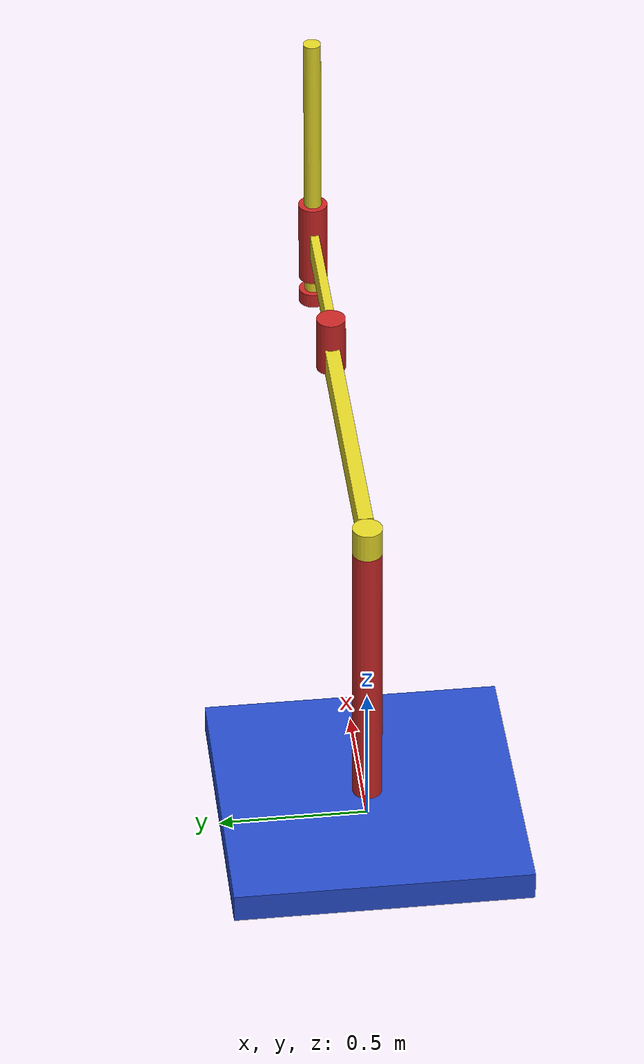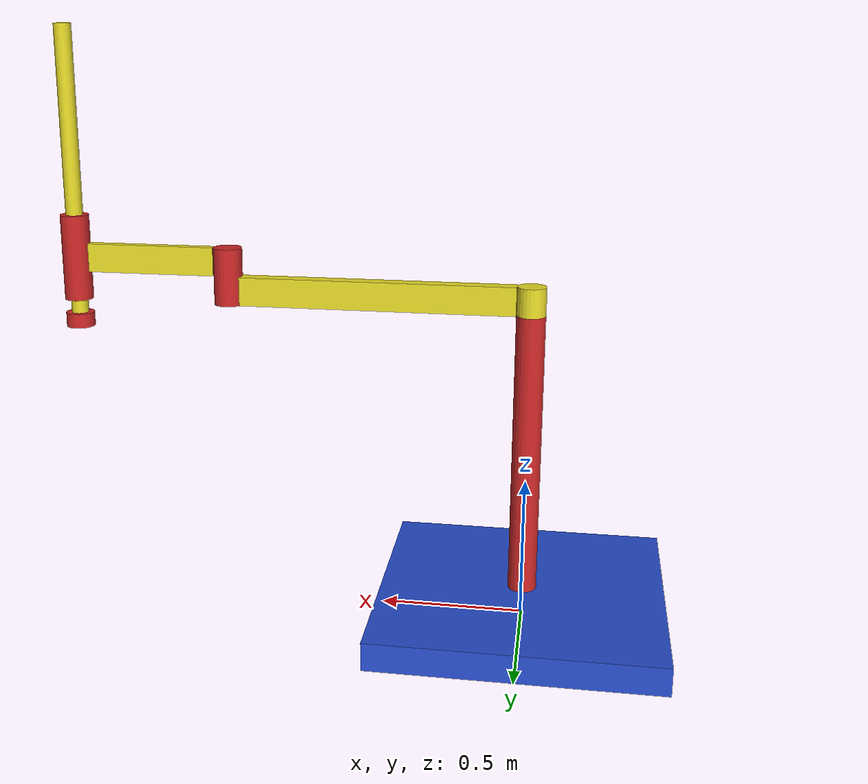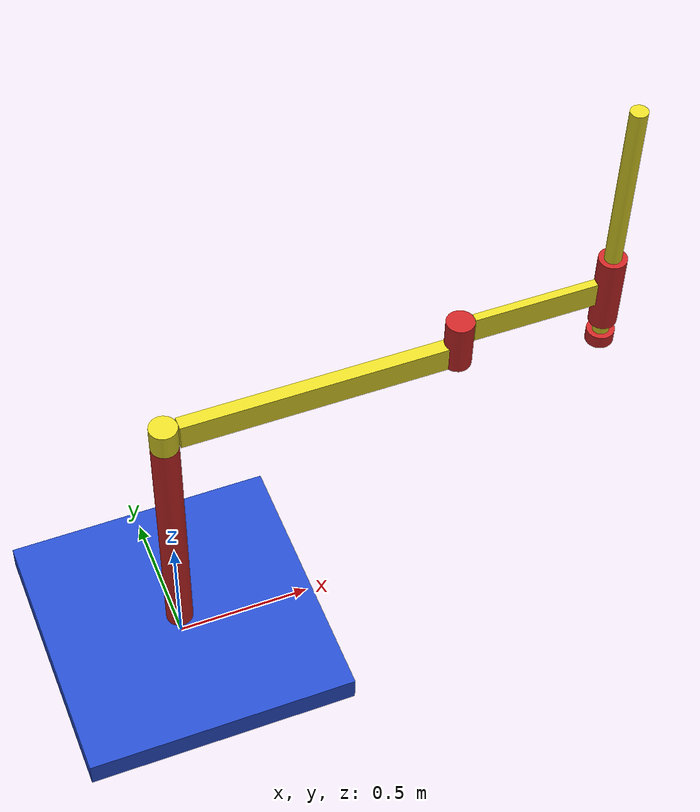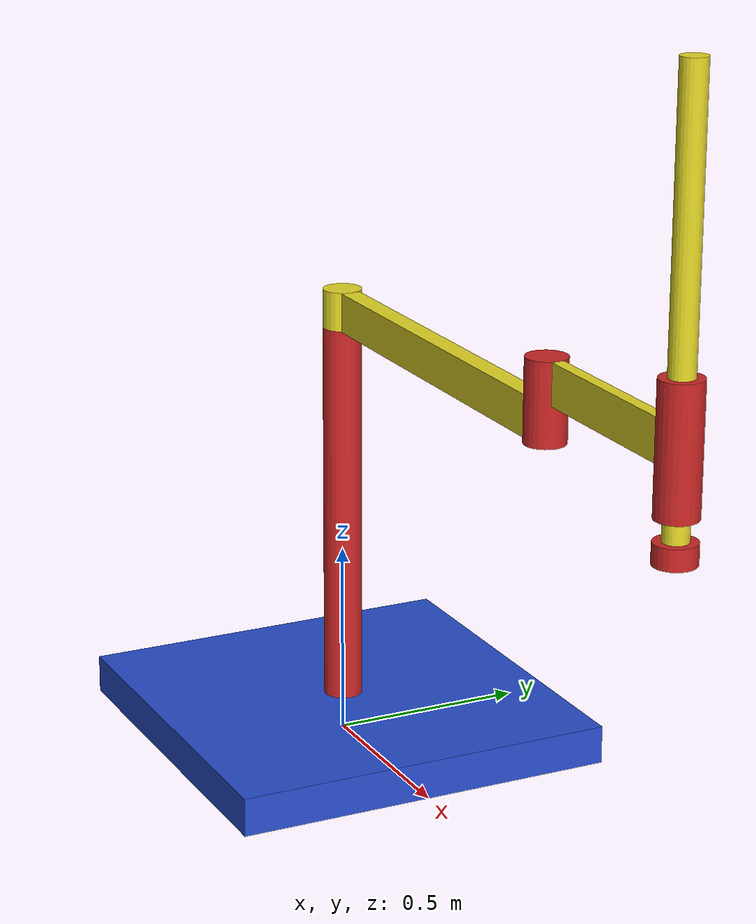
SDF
<?xml version='1.0'?>
<sdf version='1.6'>
  <model name='simple_arm'>
    <link name='arm_base'>
      <inertial>
        <pose frame=''>0 0 0.00099 0 -0 0</pose>
        <inertia>
          <ixx>1.11</ixx>
          <ixy>0</ixy>
          <ixz>0</ixz>
          <iyy>100.11</iyy>
          <iyz>0</iyz>
          <izz>1.01</izz>
        </inertia>
        <mass>101</mass>
      </inertial>
      <self_collide>0</self_collide>
      <enable_wind>0</enable_wind>
      <kinematic>0</kinematic>
      <pose frame=''>0 0 0 0 -0 0</pose>
      <visual name='arm_base_geom_arm_trunk_visual'>
        <pose frame=''>0 0 0.6 0 -0 0</pose>
        <geometry>
          <cylinder>
            <radius>0.05</radius>
            <length>1</length>
          </cylinder>
        </geometry>
        <material>
          <script>
            <uri>file://media/materials/scripts/gazebo.material</uri>
            <name>Gazebo/Red</name>
          </script>
        </material>
        <transparency>0</transparency>
        <cast_shadows>1</cast_shadows>
      </visual>
      <visual name='arm_base_geom_visual'>
        <pose frame=''>0 0 0.05 0 -0 0</pose>
        <geometry>
          <box>
            <size>1 1 0.1</size>
          </box>
        </geometry>
        <material>
          <script>
            <uri>file://media/materials/scripts/gazebo.material</uri>
            <name>Gazebo/Blue</name>
          </script>
        </material>
        <transparency>0</transparency>
        <cast_shadows>1</cast_shadows>
      </visual>
      <collision name='arm_base_geom'>
        <laser_retro>0</laser_retro>
        <max_contacts>10</max_contacts>
        <pose frame=''>0 0 0.05 0 -0 0</pose>
        <geometry>
          <box>
            <size>1 1 0.1</size>
          </box>
        </geometry>
        <surface>
          <friction>
            <ode>
              <mu>1</mu>
              <mu2>1</mu2>
              <fdir1>0 0 0</fdir1>
              <slip1>0</slip1>
              <slip2>0</slip2>
            </ode>
            <torsional>
              <coefficient>1</coefficient>
              <patch_radius>0</patch_radius>
              <surface_radius>0</surface_radius>
              <use_patch_radius>1</use_patch_radius>
              <ode>
                <slip>0</slip>
              </ode>
            </torsional>
          </friction>
          <bounce>
            <restitution_coefficient>0</restitution_coefficient>
            <threshold>1e+06</threshold>
          </bounce>
          <contact>
            <collide_without_contact>0</collide_without_contact>
            <collide_without_contact_bitmask>1</collide_without_contact_bitmask>
            <collide_bitmask>1</collide_bitmask>
            <ode>
              <soft_cfm>0</soft_cfm>
              <soft_erp>0.2</soft_erp>
              <kp>1e+13</kp>
              <kd>1</kd>
              <max_vel>0.01</max_vel>
              <min_depth>0</min_depth>
            </ode>
            <bullet>
              <split_impulse>1</split_impulse>
              <split_impulse_penetration_threshold>-0.01</split_impulse_penetration_threshold>
              <soft_cfm>0</soft_cfm>
              <soft_erp>0.2</soft_erp>
              <kp>1e+13</kp>
              <kd>1</kd>
            </bullet>
          </contact>
        </surface>
      </collision>
      <collision name='arm_base_geom_arm_trunk'>
        <laser_retro>0</laser_retro>
        <max_contacts>10</max_contacts>
        <pose frame=''>0 0 0.6 0 -0 0</pose>
        <geometry>
          <cylinder>
            <radius>0.05</radius>
            <length>1</length>
          </cylinder>
        </geometry>
        <surface>
          <friction>
            <ode>
              <mu>1</mu>
              <mu2>1</mu2>
              <fdir1>0 0 0</fdir1>
              <slip1>0</slip1>
              <slip2>0</slip2>
            </ode>
            <torsional>
              <coefficient>1</coefficient>
              <patch_radius>0</patch_radius>
              <surface_radius>0</surface_radius>
              <use_patch_radius>1</use_patch_radius>
              <ode>
                <slip>0</slip>
              </ode>
            </torsional>
          </friction>
          <bounce>
            <restitution_coefficient>0</restitution_coefficient>
            <threshold>1e+06</threshold>
          </bounce>
          <contact>
            <collide_without_contact>0</collide_without_contact>
            <collide_without_contact_bitmask>1</collide_without_contact_bitmask>
            <collide_bitmask>1</collide_bitmask>
            <ode>
              <soft_cfm>0</soft_cfm>
              <soft_erp>0.2</soft_erp>
              <kp>1e+13</kp>
              <kd>1</kd>
              <max_vel>0.01</max_vel>
              <min_depth>0</min_depth>
            </ode>
            <bullet>
              <split_impulse>1</split_impulse>
              <split_impulse_penetration_threshold>-0.01</split_impulse_penetration_threshold>
              <soft_cfm>0</soft_cfm>
              <soft_erp>0.2</soft_erp>
              <kp>1e+13</kp>
              <kd>1</kd>
            </bullet>
          </contact>
        </surface>
      </collision>
    </link>
    <link name='arm_elbow_pan'>
      <pose frame=''>1.05 0 1.09998 0 -0 0</pose>
      <inertial>
        <pose frame=''>0.0875 0 0.083333 0 -0 0</pose>
        <inertia>
          <ixx>0.031</ixx>
          <ixy>0</ixy>
          <ixz>0.005</ixz>
          <iyy>0.07275</iyy>
          <iyz>0</iyz>
          <izz>0.04475</izz>
        </inertia>
        <mass>1.2</mass>
      </inertial>
      <self_collide>0</self_collide>
      <enable_wind>0</enable_wind>
      <kinematic>0</kinematic>
      <visual name='arm_elbow_pan_geom_visual'>
        <pose frame=''>0 0 0.1 0 -0 0</pose>
        <geometry>
          <cylinder>
            <radius>0.05</radius>
            <length>0.2</length>
          </cylinder>
        </geometry>
        <material>
          <script>
            <uri>file://media/materials/scripts/gazebo.material</uri>
            <name>Gazebo/Red</name>
          </script>
        </material>
        <transparency>0</transparency>
        <cast_shadows>1</cast_shadows>
      </visual>
      <visual name='arm_elbow_pan_geom_arm_elbow_visual'>
        <pose frame=''>0.3 0 0.15 0 -0 0</pose>
        <geometry>
          <box>
            <size>0.5 0.03 0.1</size>
          </box>
        </geometry>
        <material>
          <script>
            <uri>file://media/materials/scripts/gazebo.material</uri>
            <name>Gazebo/Yellow</name>
          </script>
        </material>
        <transparency>0</transparency>
        <cast_shadows>1</cast_shadows>
      </visual>
      <visual name='arm_elbow_pan_geom_arm_wrist_visual'>
        <pose frame=''>0.55 0 0.15 0 -0 0</pose>
        <geometry>
          <cylinder>
            <radius>0.05</radius>
            <length>0.3</length>
          </cylinder>
        </geometry>
        <material>
          <script>
            <uri>file://media/materials/scripts/gazebo.material</uri>
            <name>Gazebo/Red</name>
          </script>
        </material>
        <transparency>0</transparency>
        <cast_shadows>1</cast_shadows>
      </visual>
      <collision name='arm_elbow_pan_geom'>
        <laser_retro>0</laser_retro>
        <max_contacts>10</max_contacts>
        <pose frame=''>0 0 0.1 0 -0 0</pose>
        <geometry>
          <cylinder>
            <radius>0.05</radius>
            <length>0.2</length>
          </cylinder>
        </geometry>
        <surface>
          <friction>
            <ode>
              <mu>1</mu>
              <mu2>1</mu2>
              <fdir1>0 0 0</fdir1>
              <slip1>0</slip1>
              <slip2>0</slip2>
            </ode>
            <torsional>
              <coefficient>1</coefficient>
              <patch_radius>0</patch_radius>
              <surface_radius>0</surface_radius>
              <use_patch_radius>1</use_patch_radius>
              <ode>
                <slip>0</slip>
              </ode>
            </torsional>
          </friction>
          <bounce>
            <restitution_coefficient>0</restitution_coefficient>
            <threshold>1e+06</threshold>
          </bounce>
          <contact>
            <collide_without_contact>0</collide_without_contact>
            <collide_without_contact_bitmask>1</collide_without_contact_bitmask>
            <collide_bitmask>1</collide_bitmask>
            <ode>
              <soft_cfm>0</soft_cfm>
              <soft_erp>0.2</soft_erp>
              <kp>1e+13</kp>
              <kd>1</kd>
              <max_vel>0.01</max_vel>
              <min_depth>0</min_depth>
            </ode>
            <bullet>
              <split_impulse>1</split_impulse>
              <split_impulse_penetration_threshold>-0.01</split_impulse_penetration_threshold>
              <soft_cfm>0</soft_cfm>
              <soft_erp>0.2</soft_erp>
              <kp>1e+13</kp>
              <kd>1</kd>
            </bullet>
          </contact>
        </surface>
      </collision>
      <collision name='arm_elbow_pan_geom_arm_elbow'>
        <laser_retro>0</laser_retro>
        <max_contacts>10</max_contacts>
        <pose frame=''>0.3 0 0.15 0 -0 0</pose>
        <geometry>
          <box>
            <size>0.5 0.03 0.1</size>
          </box>
        </geometry>
        <surface>
          <friction>
            <ode>
              <mu>1</mu>
              <mu2>1</mu2>
              <fdir1>0 0 0</fdir1>
              <slip1>0</slip1>
              <slip2>0</slip2>
            </ode>
            <torsional>
              <coefficient>1</coefficient>
              <patch_radius>0</patch_radius>
              <surface_radius>0</surface_radius>
              <use_patch_radius>1</use_patch_radius>
              <ode>
                <slip>0</slip>
              </ode>
            </torsional>
          </friction>
          <bounce>
            <restitution_coefficient>0</restitution_coefficient>
            <threshold>1e+06</threshold>
          </bounce>
          <contact>
            <collide_without_contact>0</collide_without_contact>
            <collide_without_contact_bitmask>1</collide_without_contact_bitmask>
            <collide_bitmask>1</collide_bitmask>
            <ode>
              <soft_cfm>0</soft_cfm>
              <soft_erp>0.2</soft_erp>
              <kp>1e+13</kp>
              <kd>1</kd>
              <max_vel>0.01</max_vel>
              <min_depth>0</min_depth>
            </ode>
            <bullet>
              <split_impulse>1</split_impulse>
              <split_impulse_penetration_threshold>-0.01</split_impulse_penetration_threshold>
              <soft_cfm>0</soft_cfm>
              <soft_erp>0.2</soft_erp>
              <kp>1e+13</kp>
              <kd>1</kd>
            </bullet>
          </contact>
        </surface>
      </collision>
      <collision name='arm_elbow_pan_geom_arm_wrist'>
        <laser_retro>0</laser_retro>
        <max_contacts>10</max_contacts>
        <pose frame=''>0.55 0 0.15 0 -0 0</pose>
        <geometry>
          <cylinder>
            <radius>0.05</radius>
            <length>0.3</length>
          </cylinder>
        </geometry>
        <surface>
          <friction>
            <ode>
              <mu>1</mu>
              <mu2>1</mu2>
              <fdir1>0 0 0</fdir1>
              <slip1>0</slip1>
              <slip2>0</slip2>
            </ode>
            <torsional>
              <coefficient>1</coefficient>
              <patch_radius>0</patch_radius>
              <surface_radius>0</surface_radius>
              <use_patch_radius>1</use_patch_radius>
              <ode>
                <slip>0</slip>
              </ode>
            </torsional>
          </friction>
          <bounce>
            <restitution_coefficient>0</restitution_coefficient>
            <threshold>1e+06</threshold>
          </bounce>
          <contact>
            <collide_without_contact>0</collide_without_contact>
            <collide_without_contact_bitmask>1</collide_without_contact_bitmask>
            <collide_bitmask>1</collide_bitmask>
            <ode>
              <soft_cfm>0</soft_cfm>
              <soft_erp>0.2</soft_erp>
              <kp>1e+13</kp>
              <kd>1</kd>
              <max_vel>0.01</max_vel>
              <min_depth>0</min_depth>
            </ode>
            <bullet>
              <split_impulse>1</split_impulse>
              <split_impulse_penetration_threshold>-0.01</split_impulse_penetration_threshold>
              <soft_cfm>0</soft_cfm>
              <soft_erp>0.2</soft_erp>
              <kp>1e+13</kp>
              <kd>1</kd>
            </bullet>
          </contact>
        </surface>
      </collision>
    </link>
    <link name='arm_shoulder_pan'>
      <pose frame=''>-0 0 1.09998 0 -0 0</pose>
      <inertial>
        <pose frame=''>0.045455 0 0 0 -0 0</pose>
        <inertia>
          <ixx>0.011</ixx>
          <ixy>0</ixy>
          <ixz>0</ixz>
          <iyy>0.0225</iyy>
          <iyz>0</iyz>
          <izz>0.0135</izz>
        </inertia>
        <mass>1.1</mass>
      </inertial>
      <self_collide>0</self_collide>
      <enable_wind>0</enable_wind>
      <kinematic>0</kinematic>
      <visual name='arm_shoulder_pan_geom_visual'>
        <pose frame=''>0 0 0.05 0 -0 0</pose>
        <geometry>
          <cylinder>
            <radius>0.05</radius>
            <length>0.1</length>
          </cylinder>
        </geometry>
        <material>
          <script>
            <uri>file://media/materials/scripts/gazebo.material</uri>
            <name>Gazebo/Yellow</name>
          </script>
        </material>
        <transparency>0</transparency>
        <cast_shadows>1</cast_shadows>
      </visual>
      <visual name='arm_shoulder_pan_geom_arm_shoulder_visual'>
        <pose frame=''>0.55 0 0.05 0 -0 0</pose>
        <geometry>
          <box>
            <size>1 0.05 0.1</size>
          </box>
        </geometry>
        <material>
          <script>
            <uri>file://media/materials/scripts/gazebo.material</uri>
            <name>Gazebo/Yellow</name>
          </script>
        </material>
        <transparency>0</transparency>
        <cast_shadows>1</cast_shadows>
      </visual>
      <collision name='arm_shoulder_pan_geom'>
        <laser_retro>0</laser_retro>
        <max_contacts>10</max_contacts>
        <pose frame=''>0 0 0.05 0 -0 0</pose>
        <geometry>
          <cylinder>
            <radius>0.05</radius>
            <length>0.1</length>
          </cylinder>
        </geometry>
        <surface>
          <friction>
            <ode>
              <mu>1</mu>
              <mu2>1</mu2>
              <fdir1>0 0 0</fdir1>
              <slip1>0</slip1>
              <slip2>0</slip2>
            </ode>
            <torsional>
              <coefficient>1</coefficient>
              <patch_radius>0</patch_radius>
              <surface_radius>0</surface_radius>
              <use_patch_radius>1</use_patch_radius>
              <ode>
                <slip>0</slip>
              </ode>
            </torsional>
          </friction>
          <bounce>
            <restitution_coefficient>0</restitution_coefficient>
            <threshold>1e+06</threshold>
          </bounce>
          <contact>
            <collide_without_contact>0</collide_without_contact>
            <collide_without_contact_bitmask>1</collide_without_contact_bitmask>
            <collide_bitmask>1</collide_bitmask>
            <ode>
              <soft_cfm>0</soft_cfm>
              <soft_erp>0.2</soft_erp>
              <kp>1e+13</kp>
              <kd>1</kd>
              <max_vel>0.01</max_vel>
              <min_depth>0</min_depth>
            </ode>
            <bullet>
              <split_impulse>1</split_impulse>
              <split_impulse_penetration_threshold>-0.01</split_impulse_penetration_threshold>
              <soft_cfm>0</soft_cfm>
              <soft_erp>0.2</soft_erp>
              <kp>1e+13</kp>
              <kd>1</kd>
            </bullet>
          </contact>
        </surface>
      </collision>
      <collision name='arm_shoulder_pan_geom_arm_shoulder'>
        <laser_retro>0</laser_retro>
        <max_contacts>10</max_contacts>
        <pose frame=''>0.55 0 0.05 0 -0 0</pose>
        <geometry>
          <box>
            <size>1 0.05 0.1</size>
          </box>
        </geometry>
        <surface>
          <friction>
            <ode>
              <mu>1</mu>
              <mu2>1</mu2>
              <fdir1>0 0 0</fdir1>
              <slip1>0</slip1>
              <slip2>0</slip2>
            </ode>
            <torsional>
              <coefficient>1</coefficient>
              <patch_radius>0</patch_radius>
              <surface_radius>0</surface_radius>
              <use_patch_radius>1</use_patch_radius>
              <ode>
                <slip>0</slip>
              </ode>
            </torsional>
          </friction>
          <bounce>
            <restitution_coefficient>0</restitution_coefficient>
            <threshold>1e+06</threshold>
          </bounce>
          <contact>
            <collide_without_contact>0</collide_without_contact>
            <collide_without_contact_bitmask>1</collide_without_contact_bitmask>
            <collide_bitmask>1</collide_bitmask>
            <ode>
              <soft_cfm>0</soft_cfm>
              <soft_erp>0.2</soft_erp>
              <kp>1e+13</kp>
              <kd>1</kd>
              <max_vel>0.01</max_vel>
              <min_depth>0</min_depth>
            </ode>
            <bullet>
              <split_impulse>1</split_impulse>
              <split_impulse_penetration_threshold>-0.01</split_impulse_penetration_threshold>
              <soft_cfm>0</soft_cfm>
              <soft_erp>0.2</soft_erp>
              <kp>1e+13</kp>
              <kd>1</kd>
            </bullet>
          </contact>
        </surface>
      </collision>
    </link>
    <link name='arm_wrist_lift'>
      <pose frame=''>1.6 0 1.04999 0 -0 0</pose>
      <inertial>
        <pose frame=''>0 0 0 0 -0 0</pose>
        <inertia>
          <ixx>0.01</ixx>
          <ixy>0</ixy>
          <ixz>0</ixz>
          <iyy>0.01</iyy>
          <iyz>0</iyz>
          <izz>0.001</izz>
        </inertia>
        <mass>0.1</mass>
      </inertial>
      <self_collide>0</self_collide>
      <enable_wind>0</enable_wind>
      <kinematic>0</kinematic>
      <visual name='arm_wrist_lift_geom_visual'>
        <pose frame=''>0 0 0.5 0 -0 0</pose>
        <geometry>
          <cylinder>
            <radius>0.03</radius>
            <length>1</length>
          </cylinder>
        </geometry>
        <material>
          <script>
            <uri>file://media/materials/scripts/gazebo.material</uri>
            <name>Gazebo/Yellow</name>
          </script>
        </material>
        <transparency>0</transparency>
        <cast_shadows>1</cast_shadows>
      </visual>
      <collision name='arm_wrist_lift_geom'>
        <laser_retro>0</laser_retro>
        <max_contacts>10</max_contacts>
        <pose frame=''>0 0 0.5 0 -0 0</pose>
        <geometry>
          <cylinder>
            <radius>0.03</radius>
            <length>1</length>
          </cylinder>
        </geometry>
        <surface>
          <friction>
            <ode>
              <mu>1</mu>
              <mu2>1</mu2>
              <fdir1>0 0 0</fdir1>
              <slip1>0</slip1>
              <slip2>0</slip2>
            </ode>
            <torsional>
              <coefficient>1</coefficient>
              <patch_radius>0</patch_radius>
              <surface_radius>0</surface_radius>
              <use_patch_radius>1</use_patch_radius>
              <ode>
                <slip>0</slip>
              </ode>
            </torsional>
          </friction>
          <bounce>
            <restitution_coefficient>0</restitution_coefficient>
            <threshold>1e+06</threshold>
          </bounce>
          <contact>
            <collide_without_contact>0</collide_without_contact>
            <collide_without_contact_bitmask>1</collide_without_contact_bitmask>
            <collide_bitmask>1</collide_bitmask>
            <ode>
              <soft_cfm>0</soft_cfm>
              <soft_erp>0.2</soft_erp>
              <kp>1e+13</kp>
              <kd>1</kd>
              <max_vel>0.01</max_vel>
              <min_depth>0</min_depth>
            </ode>
            <bullet>
              <split_impulse>1</split_impulse>
              <split_impulse_penetration_threshold>-0.01</split_impulse_penetration_threshold>
              <soft_cfm>0</soft_cfm>
              <soft_erp>0.2</soft_erp>
              <kp>1e+13</kp>
              <kd>1</kd>
            </bullet>
          </contact>
        </surface>
      </collision>
    </link>
    <link name='arm_wrist_roll'>
      <pose frame=''>1.6 0 1 0 -0 0</pose>
      <inertial>
        <pose frame=''>0 0 0 0 -0 0</pose>
        <inertia>
          <ixx>0.01</ixx>
          <ixy>0</ixy>
          <ixz>0</ixz>
          <iyy>0.01</iyy>
          <iyz>0</iyz>
          <izz>0.001</izz>
        </inertia>
        <mass>0.1</mass>
      </inertial>
      <self_collide>0</self_collide>
      <enable_wind>0</enable_wind>
      <kinematic>0</kinematic>
      <visual name='arm_wrist_roll_geom_visual'>
        <pose frame=''>0 0 0.025 0 -0 0</pose>
        <geometry>
          <cylinder>
            <radius>0.05</radius>
            <length>0.05</length>
          </cylinder>
        </geometry>
        <material>
          <script>
            <uri>file://media/materials/scripts/gazebo.material</uri>
            <name>Gazebo/Red</name>
          </script>
        </material>
        <transparency>0</transparency>
        <cast_shadows>1</cast_shadows>
      </visual>
      <collision name='arm_wrist_roll_geom'>
        <laser_retro>0</laser_retro>
        <max_contacts>10</max_contacts>
        <pose frame=''>0 0 0.025 0 -0 0</pose>
        <geometry>
          <cylinder>
            <radius>0.05</radius>
            <length>0.05</length>
          </cylinder>
        </geometry>
        <surface>
          <friction>
            <ode>
              <mu>1</mu>
              <mu2>1</mu2>
              <fdir1>0 0 0</fdir1>
              <slip1>0</slip1>
              <slip2>0</slip2>
            </ode>
            <torsional>
              <coefficient>1</coefficient>
              <patch_radius>0</patch_radius>
              <surface_radius>0</surface_radius>
              <use_patch_radius>1</use_patch_radius>
              <ode>
                <slip>0</slip>
              </ode>
            </torsional>
          </friction>
          <bounce>
            <restitution_coefficient>0</restitution_coefficient>
            <threshold>1e+06</threshold>
          </bounce>
          <contact>
            <collide_without_contact>0</collide_without_contact>
            <collide_without_contact_bitmask>1</collide_without_contact_bitmask>
            <collide_bitmask>1</collide_bitmask>
            <ode>
              <soft_cfm>0</soft_cfm>
              <soft_erp>0.2</soft_erp>
              <kp>1e+13</kp>
              <kd>1</kd>
              <max_vel>0.01</max_vel>
              <min_depth>0</min_depth>
            </ode>
            <bullet>
              <split_impulse>1</split_impulse>
              <split_impulse_penetration_threshold>-0.01</split_impulse_penetration_threshold>
              <soft_cfm>0</soft_cfm>
              <soft_erp>0.2</soft_erp>
              <kp>1e+13</kp>
              <kd>1</kd>
            </bullet>
          </contact>
        </surface>
      </collision>
    </link>
    <joint name='arm_elbow_pan_joint' type='revolute'>
      <parent>arm_shoulder_pan</parent>
      <child>arm_elbow_pan</child>
      <pose frame=''>0 0 0 0 -0 0</pose>
      <axis>
        <xyz>0 0 1</xyz>
        <use_parent_model_frame>1</use_parent_model_frame>
        <limit>
          <lower>-1e+16</lower>
          <upper>1e+16</upper>
          <effort>-1</effort>
          <velocity>-1</velocity>
        </limit>
        <dynamics>
          <spring_reference>0</spring_reference>
          <spring_stiffness>0</spring_stiffness>
          <damping>1</damping>
          <friction>0</friction>
        </dynamics>
      </axis>
      <physics>
        <ode>
          <limit>
            <cfm>0</cfm>
            <erp>0.2</erp>
          </limit>
          <suspension>
            <cfm>0</cfm>
            <erp>0.2</erp>
          </suspension>
        </ode>
      </physics>
    </joint>
    <joint name='arm_shoulder_pan_joint' type='revolute'>
      <parent>arm_base</parent>
      <child>arm_shoulder_pan</child>
      <pose frame=''>0 0 0 0 -0 0</pose>
      <axis>
        <xyz>0 0 1</xyz>
        <use_parent_model_frame>1</use_parent_model_frame>
        <limit>
          <lower>-1e+16</lower>
          <upper>1e+16</upper>
          <effort>-1</effort>
          <velocity>-1</velocity>
        </limit>
        <dynamics>
          <spring_reference>0</spring_reference>
          <spring_stiffness>0</spring_stiffness>
          <damping>1</damping>
          <friction>0</friction>
        </dynamics>
      </axis>
      <physics>
        <ode>
          <limit>
            <cfm>0</cfm>
            <erp>0.2</erp>
          </limit>
          <suspension>
            <cfm>0</cfm>
            <erp>0.2</erp>
          </suspension>
        </ode>
      </physics>
    </joint>
    <joint name='arm_wrist_lift_joint' type='prismatic'>
      <parent>arm_elbow_pan</parent>
      <child>arm_wrist_lift</child>
      <pose frame=''>0 0 0 0 -0 0</pose>
      <axis>
        <xyz>0 0 1</xyz>
        <use_parent_model_frame>1</use_parent_model_frame>
        <limit>
          <lower>-0.8</lower>
          <upper>0.1</upper>
          <effort>-1</effort>
          <velocity>-1</velocity>
        </limit>
        <dynamics>
          <spring_reference>0</spring_reference>
          <spring_stiffness>0</spring_stiffness>
          <damping>1</damping>
          <friction>0</friction>
        </dynamics>
      </axis>
      <physics>
        <ode>
          <limit>
            <cfm>0</cfm>
            <erp>0.2</erp>
          </limit>
          <suspension>
            <cfm>0</cfm>
            <erp>0.2</erp>
          </suspension>
        </ode>
      </physics>
    </joint>
    <joint name='arm_wrist_roll_joint' type='revolute'>
      <parent>arm_wrist_lift</parent>
      <child>arm_wrist_roll</child>
      <pose frame=''>0 0 0 0 -0 0</pose>
      <axis>
        <xyz>0 0 1</xyz>
        <use_parent_model_frame>1</use_parent_model_frame>
        <limit>
          <lower>-2.99999</lower>
          <upper>2.99999</upper>
          <effort>-1</effort>
          <velocity>-1</velocity>
        </limit>
        <dynamics>
          <spring_reference>0</spring_reference>
          <spring_stiffness>0</spring_stiffness>
          <damping>1</damping>
          <friction>0</friction>
        </dynamics>
      </axis>
      <physics>
        <ode>
          <limit>
            <cfm>0</cfm>
            <erp>0.2</erp>
          </limit>
          <suspension>
            <cfm>0</cfm>
            <erp>0.2</erp>
          </suspension>
        </ode>
      </physics>
    </joint>
    <static>1</static>
    <allow_auto_disable>1</allow_auto_disable>
  </model>
</sdf>
